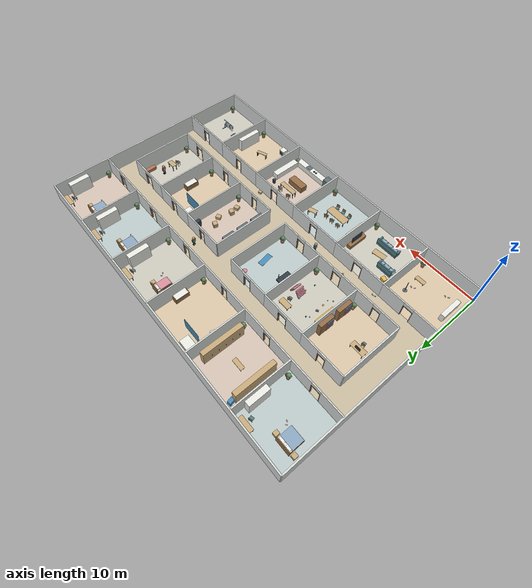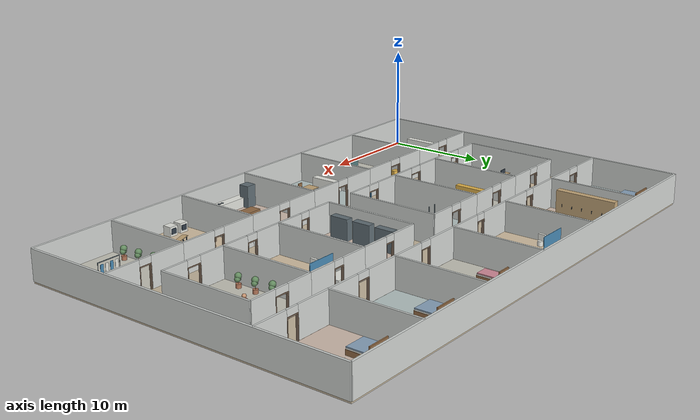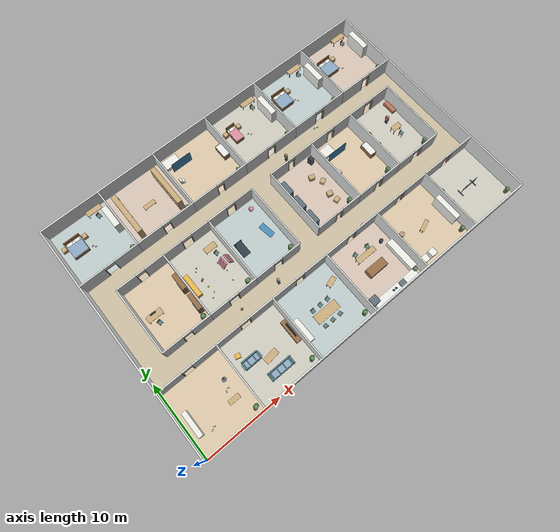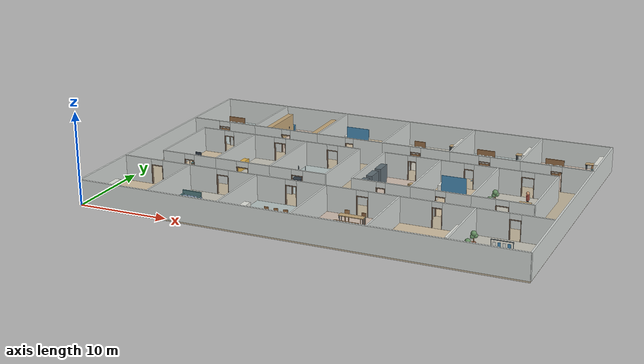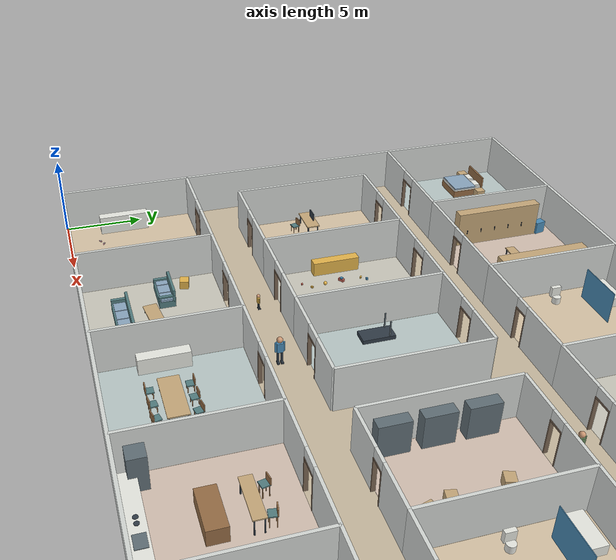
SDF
<sdf version="1.9">
 <world name="default">
  <include><uri>model://home_large</uri><name>home_large</name></include>
  <model name="person_adult_hall">
   <static>true</static>
   <pose>18 10 0 0 0 0</pose>
   <link name="body">
    <collision name="leg-1">
     <pose>0 -0.11 0.39 0 0 0</pose>
     <geometry><cylinder><radius>0.065</radius><length>0.78</length></cylinder></geometry>
     <surface><friction><ode><mu>1</mu><mu2>1</mu2></ode></friction></surface>
    </collision>
    <visual name="leg-1_visual">
     <pose>0 -0.11 0.39 0 0 0</pose>
     <geometry><cylinder><radius>0.065</radius><length>0.78</length></cylinder></geometry>
     <material>
      <ambient>0.188235294 0.231372549 0.274509804 1</ambient>
      <diffuse>0.188235294 0.231372549 0.274509804 1</diffuse>
     </material>
    </visual>
    <collision name="foot-1">
     <pose>0.06 -0.11 0.055 0 0 0</pose>
     <geometry><box><size>0.27 0.14 0.11</size></box></geometry>
     <surface><friction><ode><mu>1</mu><mu2>1</mu2></ode></friction></surface>
    </collision>
    <visual name="foot-1_visual">
     <pose>0.06 -0.11 0.055 0 0 0</pose>
     <geometry><box><size>0.27 0.14 0.11</size></box></geometry>
     <material>
      <ambient>0.188235294 0.231372549 0.274509804 1</ambient>
      <diffuse>0.188235294 0.231372549 0.274509804 1</diffuse>
     </material>
    </visual>
    <collision name="arm-1">
     <pose>0 -0.245 1.1 0 0 0</pose>
     <geometry><cylinder><radius>0.055</radius><length>0.6</length></cylinder></geometry>
     <surface><friction><ode><mu>1</mu><mu2>1</mu2></ode></friction></surface>
    </collision>
    <visual name="arm-1_visual">
     <pose>0 -0.245 1.1 0 0 0</pose>
     <geometry><cylinder><radius>0.055</radius><length>0.6</length></cylinder></geometry>
     <material>
      <ambient>0.282352941 0.545098039 0.71372549 1</ambient>
      <diffuse>0.282352941 0.545098039 0.71372549 1</diffuse>
     </material>
    </visual>
    <collision name="leg1">
     <pose>0 0.11 0.39 0 0 0</pose>
     <geometry><cylinder><radius>0.065</radius><length>0.78</length></cylinder></geometry>
     <surface><friction><ode><mu>1</mu><mu2>1</mu2></ode></friction></surface>
    </collision>
    <visual name="leg1_visual">
     <pose>0 0.11 0.39 0 0 0</pose>
     <geometry><cylinder><radius>0.065</radius><length>0.78</length></cylinder></geometry>
     <material>
      <ambient>0.188235294 0.231372549 0.274509804 1</ambient>
      <diffuse>0.188235294 0.231372549 0.274509804 1</diffuse>
     </material>
    </visual>
    <collision name="foot1">
     <pose>0.06 0.11 0.055 0 0 0</pose>
     <geometry><box><size>0.27 0.14 0.11</size></box></geometry>
     <surface><friction><ode><mu>1</mu><mu2>1</mu2></ode></friction></surface>
    </collision>
    <visual name="foot1_visual">
     <pose>0.06 0.11 0.055 0 0 0</pose>
     <geometry><box><size>0.27 0.14 0.11</size></box></geometry>
     <material>
      <ambient>0.188235294 0.231372549 0.274509804 1</ambient>
      <diffuse>0.188235294 0.231372549 0.274509804 1</diffuse>
     </material>
    </visual>
    <collision name="arm1">
     <pose>0 0.245 1.1 0 0 0</pose>
     <geometry><cylinder><radius>0.055</radius><length>0.6</length></cylinder></geometry>
     <surface><friction><ode><mu>1</mu><mu2>1</mu2></ode></friction></surface>
    </collision>
    <visual name="arm1_visual">
     <pose>0 0.245 1.1 0 0 0</pose>
     <geometry><cylinder><radius>0.055</radius><length>0.6</length></cylinder></geometry>
     <material>
      <ambient>0.282352941 0.545098039 0.71372549 1</ambient>
      <diffuse>0.282352941 0.545098039 0.71372549 1</diffuse>
     </material>
    </visual>
    <collision name="torso">
     <pose>0 0 1.08 0 0 0</pose>
     <geometry><box><size>0.27 0.38 0.6</size></box></geometry>
     <surface><friction><ode><mu>1</mu><mu2>1</mu2></ode></friction></surface>
    </collision>
    <visual name="torso_visual">
     <pose>0 0 1.08 0 0 0</pose>
     <geometry><box><size>0.27 0.38 0.6</size></box></geometry>
     <material>
      <ambient>0.282352941 0.545098039 0.71372549 1</ambient>
      <diffuse>0.282352941 0.545098039 0.71372549 1</diffuse>
     </material>
    </visual>
    <collision name="head">
     <pose>0 0 1.57 0 0 0</pose>
     <geometry><sphere><radius>0.18</radius></sphere></geometry>
     <surface><friction><ode><mu>1</mu><mu2>1</mu2></ode></friction></surface>
    </collision>
    <visual name="head_visual">
     <pose>0 0 1.57 0 0 0</pose>
     <geometry><sphere><radius>0.18</radius></sphere></geometry>
     <material>
      <ambient>0.788235294 0.588235294 0.447058824 1</ambient>
      <diffuse>0.788235294 0.588235294 0.447058824 1</diffuse>
     </material>
    </visual>
   </link>
   <plugin filename="libScriptedObstacle.so" name="sentry_simulation::ScriptedObstacle">
    <enabled>true</enabled>
    <topic>/home_large/people/enabled</topic>
    <waypoint><time>0</time><pose>18 10 0 0 0 0</pose></waypoint>
    <waypoint><time>8</time><pose>24 10 0 0 0 0</pose></waypoint>
    <waypoint><time>10</time><pose>24 10 0 0 0 3.14159265</pose></waypoint>
    <waypoint><time>18</time><pose>18 10 0 0 0 3.14159265</pose></waypoint>
    <waypoint><time>20</time><pose>18 10 0 0 0 0</pose></waypoint>
   </plugin>
  </model>
  <model name="person_adult_north">
   <static>true</static>
   <pose>29 21.8 0 0 0 0</pose>
   <link name="body">
    <collision name="leg-1">
     <pose>0 -0.1056 0.3744 0 0 0</pose>
     <geometry><cylinder><radius>0.0624</radius><length>0.7488</length></cylinder></geometry>
     <surface><friction><ode><mu>1</mu><mu2>1</mu2></ode></friction></surface>
    </collision>
    <visual name="leg-1_visual">
     <pose>0 -0.1056 0.3744 0 0 0</pose>
     <geometry><cylinder><radius>0.0624</radius><length>0.7488</length></cylinder></geometry>
     <material>
      <ambient>0.188235294 0.231372549 0.274509804 1</ambient>
      <diffuse>0.188235294 0.231372549 0.274509804 1</diffuse>
     </material>
    </visual>
    <collision name="foot-1">
     <pose>0.0576 -0.1056 0.0528 0 0 0</pose>
     <geometry><box><size>0.2592 0.1344 0.1056</size></box></geometry>
     <surface><friction><ode><mu>1</mu><mu2>1</mu2></ode></friction></surface>
    </collision>
    <visual name="foot-1_visual">
     <pose>0.0576 -0.1056 0.0528 0 0 0</pose>
     <geometry><box><size>0.2592 0.1344 0.1056</size></box></geometry>
     <material>
      <ambient>0.188235294 0.231372549 0.274509804 1</ambient>
      <diffuse>0.188235294 0.231372549 0.274509804 1</diffuse>
     </material>
    </visual>
    <collision name="arm-1">
     <pose>0 -0.2352 1.056 0 0 0</pose>
     <geometry><cylinder><radius>0.0528</radius><length>0.576</length></cylinder></geometry>
     <surface><friction><ode><mu>1</mu><mu2>1</mu2></ode></friction></surface>
    </collision>
    <visual name="arm-1_visual">
     <pose>0 -0.2352 1.056 0 0 0</pose>
     <geometry><cylinder><radius>0.0528</radius><length>0.576</length></cylinder></geometry>
     <material>
      <ambient>0.403921569 0.529411765 0.356862745 1</ambient>
      <diffuse>0.403921569 0.529411765 0.356862745 1</diffuse>
     </material>
    </visual>
    <collision name="leg1">
     <pose>0 0.1056 0.3744 0 0 0</pose>
     <geometry><cylinder><radius>0.0624</radius><length>0.7488</length></cylinder></geometry>
     <surface><friction><ode><mu>1</mu><mu2>1</mu2></ode></friction></surface>
    </collision>
    <visual name="leg1_visual">
     <pose>0 0.1056 0.3744 0 0 0</pose>
     <geometry><cylinder><radius>0.0624</radius><length>0.7488</length></cylinder></geometry>
     <material>
      <ambient>0.188235294 0.231372549 0.274509804 1</ambient>
      <diffuse>0.188235294 0.231372549 0.274509804 1</diffuse>
     </material>
    </visual>
    <collision name="foot1">
     <pose>0.0576 0.1056 0.0528 0 0 0</pose>
     <geometry><box><size>0.2592 0.1344 0.1056</size></box></geometry>
     <surface><friction><ode><mu>1</mu><mu2>1</mu2></ode></friction></surface>
    </collision>
    <visual name="foot1_visual">
     <pose>0.0576 0.1056 0.0528 0 0 0</pose>
     <geometry><box><size>0.2592 0.1344 0.1056</size></box></geometry>
     <material>
      <ambient>0.188235294 0.231372549 0.274509804 1</ambient>
      <diffuse>0.188235294 0.231372549 0.274509804 1</diffuse>
     </material>
    </visual>
    <collision name="arm1">
     <pose>0 0.2352 1.056 0 0 0</pose>
     <geometry><cylinder><radius>0.0528</radius><length>0.576</length></cylinder></geometry>
     <surface><friction><ode><mu>1</mu><mu2>1</mu2></ode></friction></surface>
    </collision>
    <visual name="arm1_visual">
     <pose>0 0.2352 1.056 0 0 0</pose>
     <geometry><cylinder><radius>0.0528</radius><length>0.576</length></cylinder></geometry>
     <material>
      <ambient>0.403921569 0.529411765 0.356862745 1</ambient>
      <diffuse>0.403921569 0.529411765 0.356862745 1</diffuse>
     </material>
    </visual>
    <collision name="torso">
     <pose>0 0 1.0368 0 0 0</pose>
     <geometry><box><size>0.2592 0.3648 0.576</size></box></geometry>
     <surface><friction><ode><mu>1</mu><mu2>1</mu2></ode></friction></surface>
    </collision>
    <visual name="torso_visual">
     <pose>0 0 1.0368 0 0 0</pose>
     <geometry><box><size>0.2592 0.3648 0.576</size></box></geometry>
     <material>
      <ambient>0.403921569 0.529411765 0.356862745 1</ambient>
      <diffuse>0.403921569 0.529411765 0.356862745 1</diffuse>
     </material>
    </visual>
    <collision name="head">
     <pose>0 0 1.5072 0 0 0</pose>
     <geometry><sphere><radius>0.17279999999999998</radius></sphere></geometry>
     <surface><friction><ode><mu>1</mu><mu2>1</mu2></ode></friction></surface>
    </collision>
    <visual name="head_visual">
     <pose>0 0 1.5072 0 0 0</pose>
     <geometry><sphere><radius>0.17279999999999998</radius></sphere></geometry>
     <material>
      <ambient>0.788235294 0.588235294 0.447058824 1</ambient>
      <diffuse>0.788235294 0.588235294 0.447058824 1</diffuse>
     </material>
    </visual>
   </link>
   <plugin filename="libScriptedObstacle.so" name="sentry_simulation::ScriptedObstacle">
    <enabled>true</enabled>
    <topic>/home_large/people/enabled</topic>
    <waypoint><time>0</time><pose>29 21.8 0 0 0 0</pose></waypoint>
    <waypoint><time>7</time><pose>34 21.8 0 0 0 0</pose></waypoint>
    <waypoint><time>9</time><pose>34 21.8 0 0 0 3.14159265</pose></waypoint>
    <waypoint><time>16</time><pose>29 21.8 0 0 0 3.14159265</pose></waypoint>
    <waypoint><time>18</time><pose>29 21.8 0 0 0 0</pose></waypoint>
   </plugin>
  </model>
  <model name="person_child">
   <static>true</static>
   <pose>12.75 10.2 0 0 0 1.57079633</pose>
   <link name="body">
    <collision name="leg-1">
     <pose>0 -0.066 0.234 0 0 0</pose>
     <geometry><cylinder><radius>0.039</radius><length>0.46799999999999997</length></cylinder></geometry>
     <surface><friction><ode><mu>1</mu><mu2>1</mu2></ode></friction></surface>
    </collision>
    <visual name="leg-1_visual">
     <pose>0 -0.066 0.234 0 0 0</pose>
     <geometry><cylinder><radius>0.039</radius><length>0.46799999999999997</length></cylinder></geometry>
     <material>
      <ambient>0.188235294 0.231372549 0.274509804 1</ambient>
      <diffuse>0.188235294 0.231372549 0.274509804 1</diffuse>
     </material>
    </visual>
    <collision name="foot-1">
     <pose>0.036 -0.066 0.033 0 0 0</pose>
     <geometry><box><size>0.162 0.084 0.066</size></box></geometry>
     <surface><friction><ode><mu>1</mu><mu2>1</mu2></ode></friction></surface>
    </collision>
    <visual name="foot-1_visual">
     <pose>0.036 -0.066 0.033 0 0 0</pose>
     <geometry><box><size>0.162 0.084 0.066</size></box></geometry>
     <material>
      <ambient>0.188235294 0.231372549 0.274509804 1</ambient>
      <diffuse>0.188235294 0.231372549 0.274509804 1</diffuse>
     </material>
    </visual>
    <collision name="arm-1">
     <pose>0 -0.147 0.66 0 0 0</pose>
     <geometry><cylinder><radius>0.033</radius><length>0.36</length></cylinder></geometry>
     <surface><friction><ode><mu>1</mu><mu2>1</mu2></ode></friction></surface>
    </collision>
    <visual name="arm-1_visual">
     <pose>0 -0.147 0.66 0 0 0</pose>
     <geometry><cylinder><radius>0.033</radius><length>0.36</length></cylinder></geometry>
     <material>
      <ambient>0.894117647 0.705882353 0.294117647 1</ambient>
      <diffuse>0.894117647 0.705882353 0.294117647 1</diffuse>
     </material>
    </visual>
    <collision name="leg1">
     <pose>0 0.066 0.234 0 0 0</pose>
     <geometry><cylinder><radius>0.039</radius><length>0.46799999999999997</length></cylinder></geometry>
     <surface><friction><ode><mu>1</mu><mu2>1</mu2></ode></friction></surface>
    </collision>
    <visual name="leg1_visual">
     <pose>0 0.066 0.234 0 0 0</pose>
     <geometry><cylinder><radius>0.039</radius><length>0.46799999999999997</length></cylinder></geometry>
     <material>
      <ambient>0.188235294 0.231372549 0.274509804 1</ambient>
      <diffuse>0.188235294 0.231372549 0.274509804 1</diffuse>
     </material>
    </visual>
    <collision name="foot1">
     <pose>0.036 0.066 0.033 0 0 0</pose>
     <geometry><box><size>0.162 0.084 0.066</size></box></geometry>
     <surface><friction><ode><mu>1</mu><mu2>1</mu2></ode></friction></surface>
    </collision>
    <visual name="foot1_visual">
     <pose>0.036 0.066 0.033 0 0 0</pose>
     <geometry><box><size>0.162 0.084 0.066</size></box></geometry>
     <material>
      <ambient>0.188235294 0.231372549 0.274509804 1</ambient>
      <diffuse>0.188235294 0.231372549 0.274509804 1</diffuse>
     </material>
    </visual>
    <collision name="arm1">
     <pose>0 0.147 0.66 0 0 0</pose>
     <geometry><cylinder><radius>0.033</radius><length>0.36</length></cylinder></geometry>
     <surface><friction><ode><mu>1</mu><mu2>1</mu2></ode></friction></surface>
    </collision>
    <visual name="arm1_visual">
     <pose>0 0.147 0.66 0 0 0</pose>
     <geometry><cylinder><radius>0.033</radius><length>0.36</length></cylinder></geometry>
     <material>
      <ambient>0.894117647 0.705882353 0.294117647 1</ambient>
      <diffuse>0.894117647 0.705882353 0.294117647 1</diffuse>
     </material>
    </visual>
    <collision name="torso">
     <pose>0 0 0.648 0 0 0</pose>
     <geometry><box><size>0.162 0.228 0.36</size></box></geometry>
     <surface><friction><ode><mu>1</mu><mu2>1</mu2></ode></friction></surface>
    </collision>
    <visual name="torso_visual">
     <pose>0 0 0.648 0 0 0</pose>
     <geometry><box><size>0.162 0.228 0.36</size></box></geometry>
     <material>
      <ambient>0.894117647 0.705882353 0.294117647 1</ambient>
      <diffuse>0.894117647 0.705882353 0.294117647 1</diffuse>
     </material>
    </visual>
    <collision name="head">
     <pose>0 0 0.942 0 0 0</pose>
     <geometry><sphere><radius>0.108</radius></sphere></geometry>
     <surface><friction><ode><mu>1</mu><mu2>1</mu2></ode></friction></surface>
    </collision>
    <visual name="head_visual">
     <pose>0 0 0.942 0 0 0</pose>
     <geometry><sphere><radius>0.108</radius></sphere></geometry>
     <material>
      <ambient>0.788235294 0.588235294 0.447058824 1</ambient>
      <diffuse>0.788235294 0.588235294 0.447058824 1</diffuse>
     </material>
    </visual>
   </link>
   <plugin filename="libScriptedObstacle.so" name="sentry_simulation::ScriptedObstacle">
    <enabled>true</enabled>
    <topic>/home_large/people/enabled</topic>
    <waypoint><time>0</time><pose>12.75 10.2 0 0 0 1.57079633</pose></waypoint>
    <waypoint><time>9</time><pose>12.75 14 0 0 0 1.57079633</pose></waypoint>
    <waypoint><time>11</time><pose>12.75 14 0 0 0 -1.57079633</pose></waypoint>
    <waypoint><time>20</time><pose>12.75 10.2 0 0 0 -1.57079633</pose></waypoint>
    <waypoint><time>22</time><pose>12.75 10.2 0 0 0 1.57079633</pose></waypoint>
   </plugin>
  </model>
  <model name="person_standing">
   <static>true</static>
   <pose>42.6 17.6 0 0 0 0</pose>
   <link name="body">
    <collision name="leg-1">
     <pose>0 -0.108114286 0.383314286 0 0 0</pose>
     <geometry>
      <cylinder><radius>0.0638857142857143</radius><length>0.7666285714285714</length></cylinder>
     </geometry>
     <surface><friction><ode><mu>1</mu><mu2>1</mu2></ode></friction></surface>
    </collision>
    <visual name="leg-1_visual">
     <pose>0 -0.108114286 0.383314286 0 0 0</pose>
     <geometry>
      <cylinder><radius>0.0638857142857143</radius><length>0.7666285714285714</length></cylinder>
     </geometry>
     <material>
      <ambient>0.188235294 0.231372549 0.274509804 1</ambient>
      <diffuse>0.188235294 0.231372549 0.274509804 1</diffuse>
     </material>
    </visual>
    <collision name="foot-1">
     <pose>0.0589714286 -0.108114286 0.0540571429 0 0 0</pose>
     <geometry><box><size>0.265371429 0.1376 0.108114286</size></box></geometry>
     <surface><friction><ode><mu>1</mu><mu2>1</mu2></ode></friction></surface>
    </collision>
    <visual name="foot-1_visual">
     <pose>0.0589714286 -0.108114286 0.0540571429 0 0 0</pose>
     <geometry><box><size>0.265371429 0.1376 0.108114286</size></box></geometry>
     <material>
      <ambient>0.188235294 0.231372549 0.274509804 1</ambient>
      <diffuse>0.188235294 0.231372549 0.274509804 1</diffuse>
     </material>
    </visual>
    <collision name="arm-1">
     <pose>0 -0.2408 1.08114286 0 0 0</pose>
     <geometry>
      <cylinder><radius>0.05405714285714286</radius><length>0.5897142857142857</length></cylinder>
     </geometry>
     <surface><friction><ode><mu>1</mu><mu2>1</mu2></ode></friction></surface>
    </collision>
    <visual name="arm-1_visual">
     <pose>0 -0.2408 1.08114286 0 0 0</pose>
     <geometry>
      <cylinder><radius>0.05405714285714286</radius><length>0.5897142857142857</length></cylinder>
     </geometry>
     <material>
      <ambient>0.8 0.396078431 0.333333333 1</ambient>
      <diffuse>0.8 0.396078431 0.333333333 1</diffuse>
     </material>
    </visual>
    <collision name="leg1">
     <pose>0 0.108114286 0.383314286 0 0 0</pose>
     <geometry>
      <cylinder><radius>0.0638857142857143</radius><length>0.7666285714285714</length></cylinder>
     </geometry>
     <surface><friction><ode><mu>1</mu><mu2>1</mu2></ode></friction></surface>
    </collision>
    <visual name="leg1_visual">
     <pose>0 0.108114286 0.383314286 0 0 0</pose>
     <geometry>
      <cylinder><radius>0.0638857142857143</radius><length>0.7666285714285714</length></cylinder>
     </geometry>
     <material>
      <ambient>0.188235294 0.231372549 0.274509804 1</ambient>
      <diffuse>0.188235294 0.231372549 0.274509804 1</diffuse>
     </material>
    </visual>
    <collision name="foot1">
     <pose>0.0589714286 0.108114286 0.0540571429 0 0 0</pose>
     <geometry><box><size>0.265371429 0.1376 0.108114286</size></box></geometry>
     <surface><friction><ode><mu>1</mu><mu2>1</mu2></ode></friction></surface>
    </collision>
    <visual name="foot1_visual">
     <pose>0.0589714286 0.108114286 0.0540571429 0 0 0</pose>
     <geometry><box><size>0.265371429 0.1376 0.108114286</size></box></geometry>
     <material>
      <ambient>0.188235294 0.231372549 0.274509804 1</ambient>
      <diffuse>0.188235294 0.231372549 0.274509804 1</diffuse>
     </material>
    </visual>
    <collision name="arm1">
     <pose>0 0.2408 1.08114286 0 0 0</pose>
     <geometry>
      <cylinder><radius>0.05405714285714286</radius><length>0.5897142857142857</length></cylinder>
     </geometry>
     <surface><friction><ode><mu>1</mu><mu2>1</mu2></ode></friction></surface>
    </collision>
    <visual name="arm1_visual">
     <pose>0 0.2408 1.08114286 0 0 0</pose>
     <geometry>
      <cylinder><radius>0.05405714285714286</radius><length>0.5897142857142857</length></cylinder>
     </geometry>
     <material>
      <ambient>0.8 0.396078431 0.333333333 1</ambient>
      <diffuse>0.8 0.396078431 0.333333333 1</diffuse>
     </material>
    </visual>
    <collision name="torso">
     <pose>0 0 1.06148571 0 0 0</pose>
     <geometry><box><size>0.265371429 0.373485714 0.589714286</size></box></geometry>
     <surface><friction><ode><mu>1</mu><mu2>1</mu2></ode></friction></surface>
    </collision>
    <visual name="torso_visual">
     <pose>0 0 1.06148571 0 0 0</pose>
     <geometry><box><size>0.265371429 0.373485714 0.589714286</size></box></geometry>
     <material>
      <ambient>0.8 0.396078431 0.333333333 1</ambient>
      <diffuse>0.8 0.396078431 0.333333333 1</diffuse>
     </material>
    </visual>
    <collision name="head">
     <pose>0 0 1.54308571 0 0 0</pose>
     <geometry><sphere><radius>0.17691428571428572</radius></sphere></geometry>
     <surface><friction><ode><mu>1</mu><mu2>1</mu2></ode></friction></surface>
    </collision>
    <visual name="head_visual">
     <pose>0 0 1.54308571 0 0 0</pose>
     <geometry><sphere><radius>0.17691428571428572</radius></sphere></geometry>
     <material>
      <ambient>0.788235294 0.588235294 0.447058824 1</ambient>
      <diffuse>0.788235294 0.588235294 0.447058824 1</diffuse>
     </material>
    </visual>
   </link>
  </model>
 </world>
</sdf>
